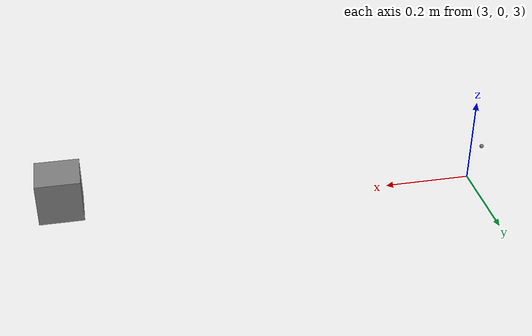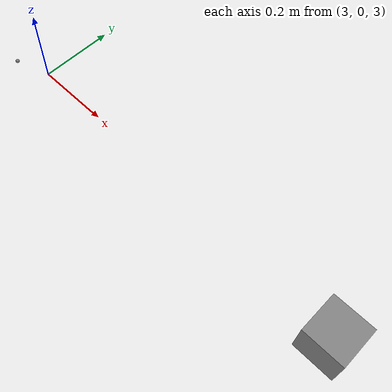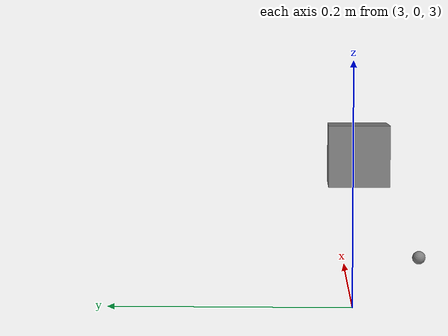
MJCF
<mujoco model="imu_sensor">
  <compiler eulerseq="XYZ"/>
  <option gravity="0 0 -5" wind="0 0 0" magnetic="5.5644999999999998e-06 2.2875799999999999e-05 -4.2388400000000002e-05"/>
  <asset>
    <material name="material_1"  emission="0.0" specular="0.800000011920929" rgba="0.96000003814697266 0.96000003814697266 0.96000003814697266 1"/>
  </asset>
  <worldbody>
    <body name="link" pos="0 0 0" euler="0 -0 0">
      <inertial pos="0 0 0" mass="1.0" fullinertia="1 1 1 0 0 0"/>
      <geom name="collision"  type="plane" group="3" size="50 50 1" pos="0 0 0" euler="0 -0 0"/>
      <geom name="visual"  type="plane" group="0" size="50 50 1" material="material_1" pos="0 0 0" euler="0 -0 0"/>
    </body>
    <body name="link_0" pos="3.9499204307677989 -0.049920303940552635 3.0499999999999998" euler="0 -0 179.90874767107849">
      <inertial pos="0 0 0" mass="0.1" fullinertia="0.00016666700000000001 0.00016666700000000001 0.00016666700000000001 0 0 0"/>
      <geom name="collision_0"  type="box" group="3" size="0.050000000000000003 0.050000000000000003 0.050000000000000003" pos="0 0 0" euler="0 -0 0"/>
      <geom name="visual_0"  type="box" group="0" size="0.050000000000000003 0.050000000000000003 0.050000000000000003" pos="0 0 0" euler="0 -0 0"/>
      <site name="imu_sensor" pos="1 0 0" euler="0 45 0"/>
      <freejoint name="unnamed_joint_0"/>
    </body>
  </worldbody>
  <sensor>
    <accelerometer name="accelerometer_imu_sensor" noise="0.1" site="imu_sensor"/>
    <gyro noise="0.0" site="imu_sensor"/>
  </sensor>
</mujoco>
